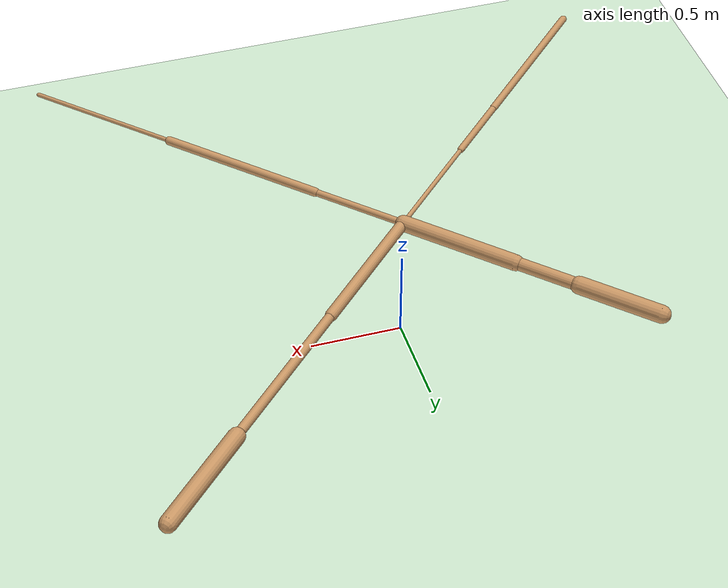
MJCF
<mujoco model="ant">
  <compiler angle="degree" coordinate="local" inertiafromgeom="true" />
  <option integrator="RK4" timestep="0.01" />
  <custom>
    <numeric data="0.0 0.0 0.55 1.0 0.0 0.0 0.0 0.0 1.0 0.0 -1.0 0.0 -1.0 0.0 1.0" name="init_qpos" />
  </custom>
  <default>
    <joint armature="1" damping="1" limited="true" />
    <geom conaffinity="0" condim="3" density="5.0" friction="1 0.5 0.5" margin="0.01" rgba="0.8 0.6 0.4 1" />
  </default>
  <asset>
    <texture builtin="gradient" height="100" rgb1="1 1 1" rgb2="0 0 0" type="skybox" width="100" />
    <texture builtin="flat" height="1278" mark="cross" markrgb="1 1 1" name="texgeom" random="0.01" rgb1="0.8 0.6 0.4" rgb2="0.8 0.6 0.4" type="cube" width="127" />
    <texture builtin="checker" height="100" name="texplane" rgb1="0 0 0" rgb2="0.8 0.8 0.8" type="2d" width="100" />
    <material name="MatPlane" reflectance="0.5" shininess="1" specular="1" texrepeat="60 60" texture="texplane" />
    <material name="geom" texture="texgeom" texuniform="true" />
  </asset>
  <worldbody>
    <light cutoff="100" diffuse="1 1 1" dir="-0 0 -1.3" directional="true" exponent="1" pos="0 0 1.3" specular=".1 .1 .1" />
    <geom conaffinity="1" condim="3" material="MatPlane" name="floor" pos="0 0 0" rgba="0.8 0.9 0.8 1" size="40 40 40" type="plane" />
    <body name="torso" pos="0 0 0.75">
      <camera name="track" mode="trackcom" pos="0 -11 5" xyaxes="1 0 0 0 0.5 1" />
      <geom name="torso_geom" pos="0 0 0" size="0.020562300458550453" type="sphere" />
      <joint armature="0" damping="0" limited="false" margin="0.01" name="root" pos="0 0 0" type="free" />
      <body name="front_left_leg" pos="0 0 0">
        <geom fromto="0 0 0 0.5507321357727051 0.5507321357727051 0" name="aux_1_geom" size="0.031201928853988647" type="capsule" />
        <body name="aux_1" pos="0.5507321357727051 0.5507321357727051 0">
          <joint axis="0 0 1" name="hip_1" pos="0.0 0.0 0.0" range="-30 30" type="hinge" />
          <geom fromto="0 0 0 0.6501426100730896 0.6501426100730896 0" name="left_leg_geom" size="0.02549249306321144" type="capsule" />
          <body name="left_leg_geom_aux" pos="0.6501426100730896 0.6501426100730896 0">
            <joint axis="-1 1 0" name="ankle_1" pos="0.0 0.0 0.0" range="30 70" type="hinge" />
            <geom fromto="0 0 0 0.4279172420501709 0.4279172420501709 0" name="left_ankle_geom" size="0.044176310300827026" type="capsule" />
          </body>
        </body>
      </body>
      <body name="front_right_leg" pos="0 0 0">
        <geom fromto="0 0 0 -0.45032426714897156 0.45032426714897156 0" name="aux_2_geom" size="0.042190615087747574" type="capsule" />
        <body name="aux_2" pos="-0.45032426714897156 0.45032426714897156 0">
          <joint axis="0 0 1" name="hip_2" pos="0.0 0.0 0.0" range="-30 30" type="hinge" />
          <geom fromto="0 0 0 -0.2451724112033844 0.2451724112033844 0" name="right_leg_geom" size="0.033791229128837585" type="capsule" />
          <body name="right_leg_geom_aux" pos="-0.2451724112033844 0.2451724112033844 0">
            <joint axis="1 1 0" name="ankle_2" pos="0.0 0.0 0.0" range="-70 -30" type="hinge" />
            <geom fromto="0 0 0 -0.3133500814437866 0.3133500814437866 0" name="right_ankle_geom" size="0.04656980559229851" type="capsule" />
          </body>
        </body>
      </body>
      <body name="back_leg" pos="0 0 0">
        <geom fromto="0 0 0 -0.4772454500198364 -0.4772454500198364 0" name="aux_3_geom" size="0.011961422860622406" type="capsule" />
        <body name="aux_3" pos="-0.4772454500198364 -0.4772454500198364 0">
          <joint axis="0 0 1" name="hip_3" pos="0.0 0.0 0.0" range="-30 30" type="hinge" />
          <geom fromto="0 0 0 -0.2883783280849457 -0.2883783280849457 0" name="back_leg_geom" size="0.01836210861802101" type="capsule" />
          <body name="back_leg_geom_aux" pos="-0.2883783280849457 -0.2883783280849457 0">
            <joint axis="-1 1 0" name="ankle_3" pos="0.0 0.0 0.0" range="-70 -30" type="hinge" />
            <geom fromto="0 0 0 -0.6587008237838745 -0.6587008237838745 0" name="third_ankle_geom" size="0.02024318091571331" type="capsule" />
          </body>
        </body>
      </body>
      <body name="right_back_leg" pos="0 0 0">
        <geom fromto="0 0 0 0.36540839076042175 -0.36540839076042175 0" name="aux_4_geom" size="0.018411505967378616" type="capsule" />
        <body name="aux_4" pos="0.36540839076042175 -0.36540839076042175 0">
          <joint axis="0 0 1" name="hip_4" pos="0.0 0.0 0.0" range="-30 30" type="hinge" />
          <geom fromto="0 0 0 0.631158173084259 -0.631158173084259 0" name="rightback_leg_geom" size="0.023803183808922768" type="capsule" />
          <body name="rightback_leg_geom_aux" pos="0.631158173084259 -0.631158173084259 0">
            <joint axis="1 1 0" name="ankle_4" pos="0.0 0.0 0.0" range="30 70" type="hinge" />
            <geom fromto="0 0 0 0.5961554646492004 -0.5961554646492004 0" name="fourth_ankle_geom" size="0.011386891826987267" type="capsule" />
          </body>
        </body>
      </body>
    </body>
  </worldbody>
  <actuator>
    <motor ctrllimited="true" ctrlrange="-1.0 1.0" joint="hip_4" gear="150" />
    <motor ctrllimited="true" ctrlrange="-1.0 1.0" joint="ankle_4" gear="150" />
    <motor ctrllimited="true" ctrlrange="-1.0 1.0" joint="hip_1" gear="150" />
    <motor ctrllimited="true" ctrlrange="-1.0 1.0" joint="ankle_1" gear="150" />
    <motor ctrllimited="true" ctrlrange="-1.0 1.0" joint="hip_2" gear="150" />
    <motor ctrllimited="true" ctrlrange="-1.0 1.0" joint="ankle_2" gear="150" />
    <motor ctrllimited="true" ctrlrange="-1.0 1.0" joint="hip_3" gear="150" />
    <motor ctrllimited="true" ctrlrange="-1.0 1.0" joint="ankle_3" gear="150" />
  </actuator>
</mujoco>
